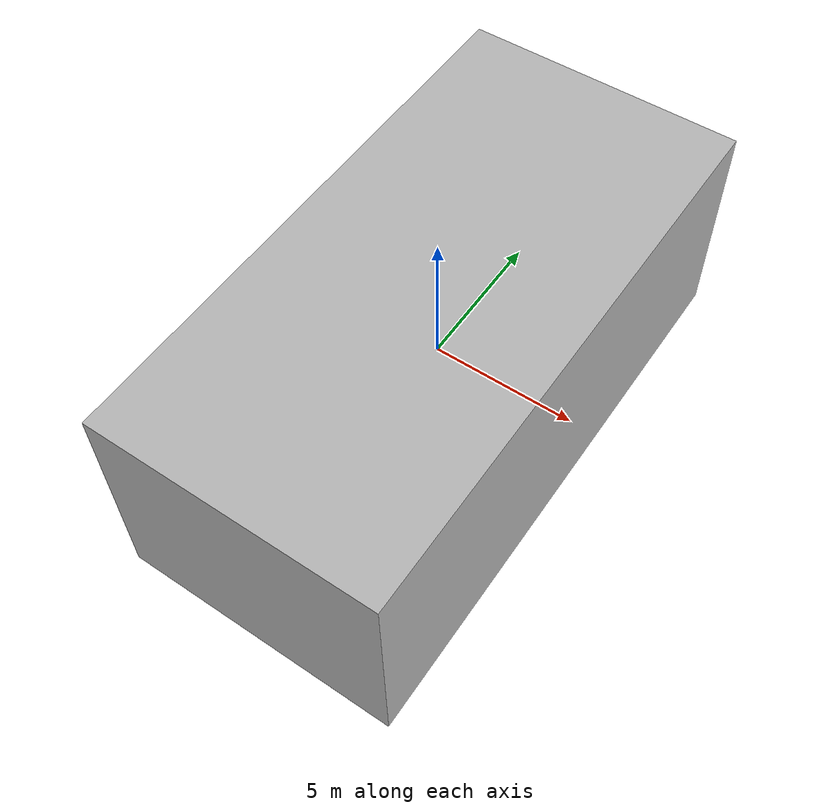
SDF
<?xml version='1.0'?>
<sdf version="1.4">
  <model name="orchard">
    <pose frame=''>0 0 0 0 0 0</pose>
    <static>true</static>
    <link name="building_1">
      <inertial>

        <mass>10.0</mass>
        <inertia>
          <ixx>1</ixx>
          <ixy>0.0</ixy>
          <ixz>0.0</ixz>
          <iyy>1</iyy>
          <iyz>0.0</iyz>
          <izz>1</izz>
        </inertia>
      </inertial>
      <collision name="collision">
        <geometry>
          <box>
            <size>10 20 8</size>
          </box>
        </geometry>
      </collision>
      <visual name="visual">
        <geometry>
          <box>
            <size>10 20 8</size>
          </box>
        </geometry>
      </visual>
    </link>
  </model>
</sdf>
